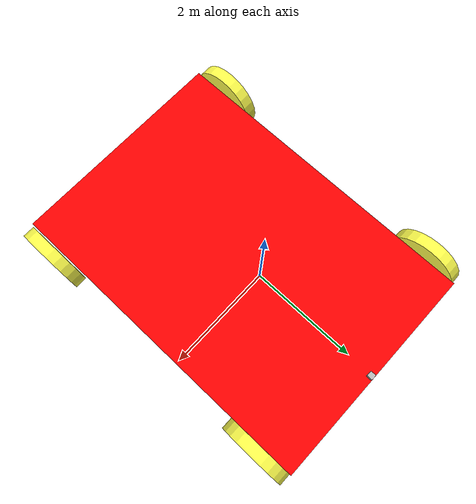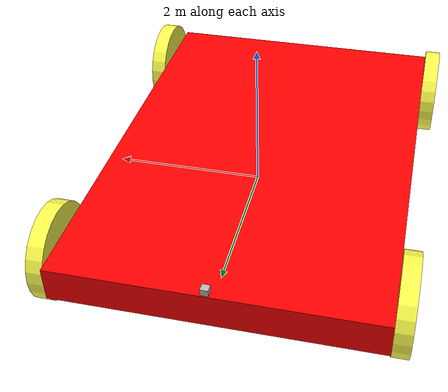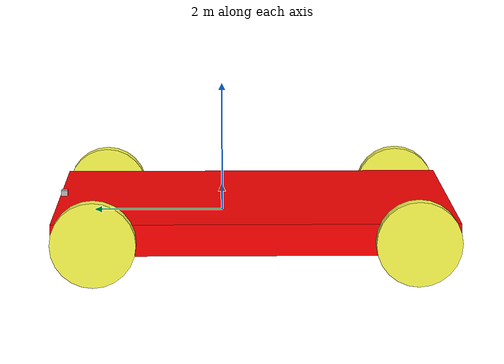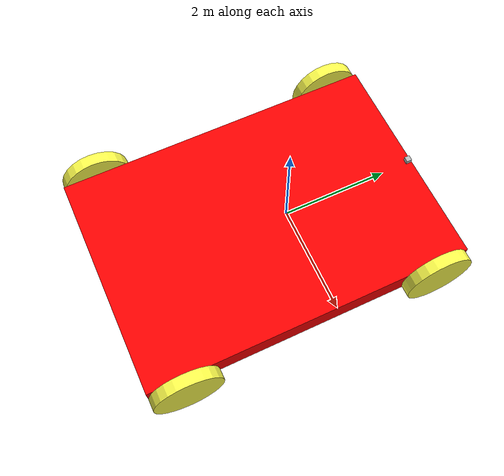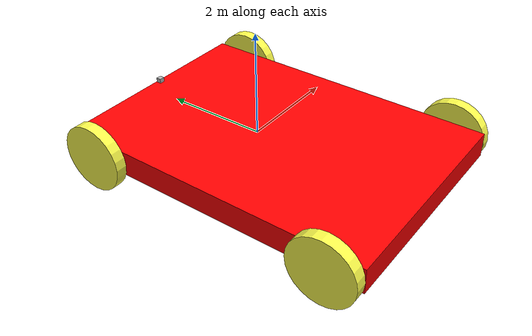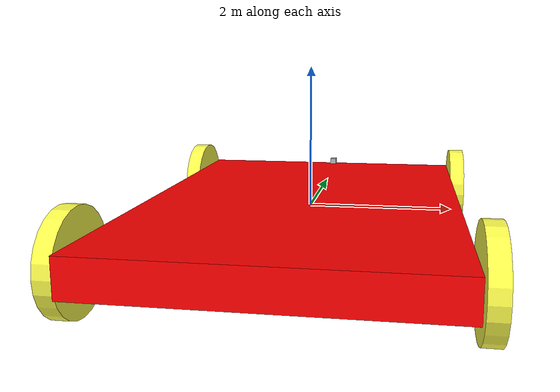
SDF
<?xml version='1.0'?>
<sdf version='1.6'>
  <model name='test'>
    <link name='link_0'>
      <inertial>
        <mass>12.0862</mass>
        <inertia>
          <ixx>37.404</ixx>
          <ixy>0</ixy>
          <ixz>0</ixz>
          <iyy>17.9472</iyy>
          <iyz>0</iyz>
          <izz>54.8982</izz>
        </inertia>
        <pose frame=''>0 0 0 0 -0 0</pose>
      </inertial>
      <pose frame=''>-0.018137 -0.495672 -0.026455 0 -0 0</pose>
      <gravity>1</gravity>
      <self_collide>0</self_collide>
      <kinematic>0</kinematic>
      <enable_wind>0</enable_wind>
      <visual name='visual'>
        <pose frame=''>0 0 0 0 -0 0</pose>
        <geometry>
          <box>
            <size>4.19455 6.07555 0.474257</size>
          </box>
        </geometry>
        <material>
          <lighting>1</lighting>
          <script>
            <uri>file://media/materials/scripts/gazebo.material</uri>
            <name>Gazebo/Grey</name>
          </script>
          <ambient>1 0 0 0</ambient>
          <shader type='vertex'>
            <normal_map>__default__</normal_map>
          </shader>
          <diffuse>0.7 0.7 0.7 1</diffuse>
          <specular>0.01 0.01 0.01 1</specular>
          <emissive>0 0 0 1</emissive>
        </material>
        <transparency>0</transparency>
        <cast_shadows>1</cast_shadows>
      </visual>
      <collision name='collision'>
        <laser_retro>0</laser_retro>
        <max_contacts>10</max_contacts>
        <pose frame=''>0 0 0 0 -0 0</pose>
        <geometry>
          <box>
            <size>4.19455 6.07555 0.474257</size>
          </box>
        </geometry>
        <surface>
          <friction>
            <ode>
              <mu>1</mu>
              <mu2>1</mu2>
              <fdir1>0 0 0</fdir1>
              <slip1>0</slip1>
              <slip2>0</slip2>
            </ode>
            <torsional>
              <coefficient>1</coefficient>
              <patch_radius>0</patch_radius>
              <surface_radius>0</surface_radius>
              <use_patch_radius>1</use_patch_radius>
              <ode>
                <slip>0</slip>
              </ode>
            </torsional>
          </friction>
          <bounce>
            <restitution_coefficient>0</restitution_coefficient>
            <threshold>1e+06</threshold>
          </bounce>
          <contact>
            <collide_without_contact>0</collide_without_contact>
            <collide_without_contact_bitmask>1</collide_without_contact_bitmask>
            <collide_bitmask>1</collide_bitmask>
            <ode>
              <soft_cfm>0</soft_cfm>
              <soft_erp>0.2</soft_erp>
              <kp>1e+13</kp>
              <kd>1</kd>
              <max_vel>0.01</max_vel>
              <min_depth>0</min_depth>
            </ode>
            <bullet>
              <split_impulse>1</split_impulse>
              <split_impulse_penetration_threshold>-0.01</split_impulse_penetration_threshold>
              <soft_cfm>0</soft_cfm>
              <soft_erp>0.2</soft_erp>
              <kp>1e+13</kp>
              <kd>1</kd>
            </bullet>
          </contact>
        </surface>
      </collision>
    </link>
    <link name='link_1'>
      <inertial>
        <mass>0.353387</mass>
        <inertia>
          <ixx>0.0372116</ixx>
          <ixy>0</ixy>
          <ixz>0</ixz>
          <iyy>0.0372116</iyy>
          <iyz>0</iyz>
          <izz>0.0716261</izz>
        </inertia>
        <pose frame=''>0 0 0 0 -0 0</pose>
      </inertial>
      <pose frame=''>2.2192 -2.89676 -0.056367 0 -1.5707 0</pose>
      <gravity>1</gravity>
      <self_collide>0</self_collide>
      <kinematic>0</kinematic>
      <enable_wind>0</enable_wind>
      <visual name='visual'>
        <pose frame=''>0 0 0 0 -0 0</pose>
        <geometry>
          <cylinder>
            <radius>0.636686</radius>
            <length>0.217924</length>
          </cylinder>
        </geometry>
        <material>
          <lighting>1</lighting>
          <script>
            <uri>file://media/materials/scripts/gazebo.material</uri>
            <name>Gazebo/Grey</name>
          </script>
          <shader type='vertex'>
            <normal_map>__default__</normal_map>
          </shader>
          <ambient>1 1 0.3 1</ambient>
          <diffuse>0.7 0.7 0.7 1</diffuse>
          <specular>0.01 0.01 0.01 1</specular>
          <emissive>0 0 0 1</emissive>
        </material>
        <transparency>0</transparency>
        <cast_shadows>1</cast_shadows>
      </visual>
      <collision name='collision'>
        <laser_retro>0</laser_retro>
        <max_contacts>10</max_contacts>
        <pose frame=''>0 0 0 0 -0 0</pose>
        <geometry>
          <cylinder>
            <radius>0.636686</radius>
            <length>0.217924</length>
          </cylinder>
        </geometry>
        <surface>
          <friction>
            <ode>
              <mu>1</mu>
              <mu2>1</mu2>
              <fdir1>0 0 0</fdir1>
              <slip1>0</slip1>
              <slip2>0</slip2>
            </ode>
            <torsional>
              <coefficient>1</coefficient>
              <patch_radius>0</patch_radius>
              <surface_radius>0</surface_radius>
              <use_patch_radius>1</use_patch_radius>
              <ode>
                <slip>0</slip>
              </ode>
            </torsional>
          </friction>
          <bounce>
            <restitution_coefficient>0</restitution_coefficient>
            <threshold>1e+06</threshold>
          </bounce>
          <contact>
            <collide_without_contact>0</collide_without_contact>
            <collide_without_contact_bitmask>1</collide_without_contact_bitmask>
            <collide_bitmask>1</collide_bitmask>
            <ode>
              <soft_cfm>0</soft_cfm>
              <soft_erp>0.2</soft_erp>
              <kp>1e+13</kp>
              <kd>1</kd>
              <max_vel>0.01</max_vel>
              <min_depth>0</min_depth>
            </ode>
            <bullet>
              <split_impulse>1</split_impulse>
              <split_impulse_penetration_threshold>-0.01</split_impulse_penetration_threshold>
              <soft_cfm>0</soft_cfm>
              <soft_erp>0.2</soft_erp>
              <kp>1e+13</kp>
              <kd>1</kd>
            </bullet>
          </contact>
        </surface>
      </collision>
    </link>
    <link name='link_1_clone'>
      <inertial>
        <mass>0.353387</mass>
        <inertia>
          <ixx>0.0372116</ixx>
          <ixy>0</ixy>
          <ixz>0</ixz>
          <iyy>0.0372116</iyy>
          <iyz>0</iyz>
          <izz>0.0716261</izz>
        </inertia>
        <pose frame=''>0 0 0 0 -0 0</pose>
      </inertial>
      <pose frame=''>2.18816 1.90542 -0.056367 0 -1.5707 0</pose>
      <gravity>1</gravity>
      <self_collide>0</self_collide>
      <kinematic>0</kinematic>
      <enable_wind>0</enable_wind>
      <visual name='visual'>
        <pose frame=''>0 0 0 0 -0 0</pose>
        <geometry>
          <cylinder>
            <radius>0.636686</radius>
            <length>0.217924</length>
          </cylinder>
        </geometry>
        <material>
          <lighting>1</lighting>
          <script>
            <uri>file://media/materials/scripts/gazebo.material</uri>
            <name>Gazebo/Grey</name>
          </script>
          <shader type='vertex'>
            <normal_map>__default__</normal_map>
          </shader>
          <ambient>1 1 0.3 1</ambient>
          <diffuse>0.7 0.7 0.7 1</diffuse>
          <specular>0.01 0.01 0.01 1</specular>
          <emissive>0 0 0 1</emissive>
        </material>
        <transparency>0</transparency>
        <cast_shadows>1</cast_shadows>
      </visual>
      <collision name='collision'>
        <laser_retro>0</laser_retro>
        <max_contacts>10</max_contacts>
        <pose frame=''>0 0 0 0 -0 0</pose>
        <geometry>
          <cylinder>
            <radius>0.636686</radius>
            <length>0.217924</length>
          </cylinder>
        </geometry>
        <surface>
          <friction>
            <ode>
              <mu>1</mu>
              <mu2>1</mu2>
              <fdir1>0 0 0</fdir1>
              <slip1>0</slip1>
              <slip2>0</slip2>
            </ode>
            <torsional>
              <coefficient>1</coefficient>
              <patch_radius>0</patch_radius>
              <surface_radius>0</surface_radius>
              <use_patch_radius>1</use_patch_radius>
              <ode>
                <slip>0</slip>
              </ode>
            </torsional>
          </friction>
          <bounce>
            <restitution_coefficient>0</restitution_coefficient>
            <threshold>1e+06</threshold>
          </bounce>
          <contact>
            <collide_without_contact>0</collide_without_contact>
            <collide_without_contact_bitmask>1</collide_without_contact_bitmask>
            <collide_bitmask>1</collide_bitmask>
            <ode>
              <soft_cfm>0</soft_cfm>
              <soft_erp>0.2</soft_erp>
              <kp>1e+13</kp>
              <kd>1</kd>
              <max_vel>0.01</max_vel>
              <min_depth>0</min_depth>
            </ode>
            <bullet>
              <split_impulse>1</split_impulse>
              <split_impulse_penetration_threshold>-0.01</split_impulse_penetration_threshold>
              <soft_cfm>0</soft_cfm>
              <soft_erp>0.2</soft_erp>
              <kp>1e+13</kp>
              <kd>1</kd>
            </bullet>
          </contact>
        </surface>
      </collision>
    </link>
    <link name='link_1_clone_0'>
      <inertial>
        <mass>0.353387</mass>
        <inertia>
          <ixx>0.0372116</ixx>
          <ixy>0</ixy>
          <ixz>0</ixz>
          <iyy>0.0372116</iyy>
          <iyz>0</iyz>
          <izz>0.0716261</izz>
        </inertia>
        <pose frame=''>0 0 0 0 -0 0</pose>
      </inertial>
      <pose frame=''>-2.22444 1.90542 -0.056367 0 -1.5707 0</pose>
      <gravity>1</gravity>
      <self_collide>0</self_collide>
      <kinematic>0</kinematic>
      <enable_wind>0</enable_wind>
      <visual name='visual'>
        <pose frame=''>0 0 0 0 -0 0</pose>
        <geometry>
          <cylinder>
            <radius>0.636686</radius>
            <length>0.217924</length>
          </cylinder>
        </geometry>
        <material>
          <lighting>1</lighting>
          <script>
            <uri>file://media/materials/scripts/gazebo.material</uri>
            <name>Gazebo/Grey</name>
          </script>
          <shader type='vertex'>
            <normal_map>__default__</normal_map>
          </shader>
          <ambient>1 1 0.3 1</ambient>
          <diffuse>0.7 0.7 0.7 1</diffuse>
          <specular>0.01 0.01 0.01 1</specular>
          <emissive>0 0 0 1</emissive>
        </material>
        <transparency>0</transparency>
        <cast_shadows>1</cast_shadows>
      </visual>
      <collision name='collision'>
        <laser_retro>0</laser_retro>
        <max_contacts>10</max_contacts>
        <pose frame=''>0 0 0 0 -0 0</pose>
        <geometry>
          <cylinder>
            <radius>0.636686</radius>
            <length>0.217924</length>
          </cylinder>
        </geometry>
        <surface>
          <friction>
            <ode>
              <mu>1</mu>
              <mu2>1</mu2>
              <fdir1>0 0 0</fdir1>
              <slip1>0</slip1>
              <slip2>0</slip2>
            </ode>
            <torsional>
              <coefficient>1</coefficient>
              <patch_radius>0</patch_radius>
              <surface_radius>0</surface_radius>
              <use_patch_radius>1</use_patch_radius>
              <ode>
                <slip>0</slip>
              </ode>
            </torsional>
          </friction>
          <bounce>
            <restitution_coefficient>0</restitution_coefficient>
            <threshold>1e+06</threshold>
          </bounce>
          <contact>
            <collide_without_contact>0</collide_without_contact>
            <collide_without_contact_bitmask>1</collide_without_contact_bitmask>
            <collide_bitmask>1</collide_bitmask>
            <ode>
              <soft_cfm>0</soft_cfm>
              <soft_erp>0.2</soft_erp>
              <kp>1e+13</kp>
              <kd>1</kd>
              <max_vel>0.01</max_vel>
              <min_depth>0</min_depth>
            </ode>
            <bullet>
              <split_impulse>1</split_impulse>
              <split_impulse_penetration_threshold>-0.01</split_impulse_penetration_threshold>
              <soft_cfm>0</soft_cfm>
              <soft_erp>0.2</soft_erp>
              <kp>1e+13</kp>
              <kd>1</kd>
            </bullet>
          </contact>
        </surface>
      </collision>
    </link>
    <link name='link_1_clone_1'>
      <inertial>
        <mass>0.353387</mass>
        <inertia>
          <ixx>0.0372116</ixx>
          <ixy>0</ixy>
          <ixz>0</ixz>
          <iyy>0.0372116</iyy>
          <iyz>0</iyz>
          <izz>0.0716261</izz>
        </inertia>
        <pose frame=''>0 0 0 0 -0 0</pose>
      </inertial>
      <pose frame=''>-2.22444 -2.89676 -0.056367 0 -1.5707 0</pose>
      <gravity>1</gravity>
      <self_collide>0</self_collide>
      <kinematic>0</kinematic>
      <enable_wind>0</enable_wind>
      <visual name='visual'>
        <pose frame=''>0 0 0 0 -0 0</pose>
        <geometry>
          <cylinder>
            <radius>0.636686</radius>
            <length>0.217924</length>
          </cylinder>
        </geometry>
        <material>
          <lighting>1</lighting>
          <script>
            <uri>file://media/materials/scripts/gazebo.material</uri>
            <name>Gazebo/Grey</name>
          </script>
          <shader type='vertex'>
            <normal_map>__default__</normal_map>
          </shader>
          <ambient>1 1 0.3 1</ambient>
          <diffuse>0.7 0.7 0.7 1</diffuse>
          <specular>0.01 0.01 0.01 1</specular>
          <emissive>0 0 0 1</emissive>
        </material>
        <transparency>0</transparency>
        <cast_shadows>1</cast_shadows>
      </visual>
      <collision name='collision'>
        <laser_retro>0</laser_retro>
        <max_contacts>10</max_contacts>
        <pose frame=''>0 0 0 0 -0 0</pose>
        <geometry>
          <cylinder>
            <radius>0.636686</radius>
            <length>0.217924</length>
          </cylinder>
        </geometry>
        <surface>
          <friction>
            <ode>
              <mu>1</mu>
              <mu2>1</mu2>
              <fdir1>0 0 0</fdir1>
              <slip1>0</slip1>
              <slip2>0</slip2>
            </ode>
            <torsional>
              <coefficient>1</coefficient>
              <patch_radius>0</patch_radius>
              <surface_radius>0</surface_radius>
              <use_patch_radius>1</use_patch_radius>
              <ode>
                <slip>0</slip>
              </ode>
            </torsional>
          </friction>
          <bounce>
            <restitution_coefficient>0</restitution_coefficient>
            <threshold>1e+06</threshold>
          </bounce>
          <contact>
            <collide_without_contact>0</collide_without_contact>
            <collide_without_contact_bitmask>1</collide_without_contact_bitmask>
            <collide_bitmask>1</collide_bitmask>
            <ode>
              <soft_cfm>0</soft_cfm>
              <soft_erp>0.2</soft_erp>
              <kp>1e+13</kp>
              <kd>1</kd>
              <max_vel>0.01</max_vel>
              <min_depth>0</min_depth>
            </ode>
            <bullet>
              <split_impulse>1</split_impulse>
              <split_impulse_penetration_threshold>-0.01</split_impulse_penetration_threshold>
              <soft_cfm>0</soft_cfm>
              <soft_erp>0.2</soft_erp>
              <kp>1e+13</kp>
              <kd>1</kd>
            </bullet>
          </contact>
        </surface>
      </collision>
    </link>
    <model name='camera'>
      <pose frame=''>0.059651 2.47836 0.251921 0 -0 1.52695</pose>
      <link name='link'>
        <inertial>
          <mass>0.1</mass>
          <inertia>
            <ixx>0.000166667</ixx>
            <iyy>0.000166667</iyy>
            <izz>0.000166667</izz>
            <ixy>0</ixy>
            <ixz>0</ixz>
            <iyz>0</iyz>
          </inertia>
        </inertial>
        <collision name='collision'>
          <geometry>
            <box>
              <size>0.1 0.1 0.1</size>
            </box>
          </geometry>
        </collision>
        <visual name='visual'>
          <geometry>
            <box>
              <size>0.1 0.1 0.1</size>
            </box>
          </geometry>
        </visual>
        <sensor name='camera' type='camera'>
          <camera name='__default__'>
            <horizontal_fov>1.047</horizontal_fov>
            <image>
              <width>320</width>
              <height>240</height>
            </image>
            <clip>
              <near>0.1</near>
              <far>100</far>
            </clip>
          </camera>
          <always_on>1</always_on>
          <update_rate>30</update_rate>
          <visualize>1</visualize>
        </sensor>
      </link>
    </model>
    <joint name='link_0_JOINT_0' type='revolute'>
      <parent>link_0</parent>
      <child>link_1_clone_1</child>
      <pose frame=''>0 0 0 0 -0 0</pose>
      <axis>
        <xyz>-0 -0 -1</xyz>
        <use_parent_model_frame>0</use_parent_model_frame>
        <limit>
          <lower>-1.79769e+308</lower>
          <upper>1.79769e+308</upper>
          <effort>-1</effort>
          <velocity>-1</velocity>
        </limit>
        <dynamics>
          <spring_reference>0</spring_reference>
          <spring_stiffness>0</spring_stiffness>
          <damping>0</damping>
        </dynamics>
      </axis>
      <physics>
        <ode>
          <limit>
            <cfm>0</cfm>
            <erp>0.2</erp>
          </limit>
          <suspension>
            <cfm>0</cfm>
            <erp>0.2</erp>
          </suspension>
        </ode>
      </physics>
    </joint>
    <joint name='link_0_JOINT_1' type='revolute'>
      <parent>link_0</parent>
      <child>link_1</child>
      <pose frame=''>0 0 0 0 -0 0</pose>
      <axis>
        <xyz>0 0 1</xyz>
        <use_parent_model_frame>0</use_parent_model_frame>
        <limit>
          <lower>-1.79769e+308</lower>
          <upper>1.79769e+308</upper>
          <effort>-1</effort>
          <velocity>-1</velocity>
        </limit>
        <dynamics>
          <spring_reference>0</spring_reference>
          <spring_stiffness>0</spring_stiffness>
          <damping>0</damping>
        </dynamics>
      </axis>
      <physics>
        <ode>
          <limit>
            <cfm>0</cfm>
            <erp>0.2</erp>
          </limit>
          <suspension>
            <cfm>0</cfm>
            <erp>0.2</erp>
          </suspension>
        </ode>
      </physics>
    </joint>
    <joint name='link_0_JOINT_2' type='revolute'>
      <parent>link_0</parent>
      <child>link_1_clone</child>
      <pose frame=''>0 0 0 0 -0 0</pose>
      <axis>
        <xyz>0 0 1</xyz>
        <use_parent_model_frame>0</use_parent_model_frame>
        <limit>
          <lower>-1.79769e+308</lower>
          <upper>1.79769e+308</upper>
          <effort>-1</effort>
          <velocity>-1</velocity>
        </limit>
        <dynamics>
          <spring_reference>0</spring_reference>
          <spring_stiffness>0</spring_stiffness>
          <damping>0</damping>
        </dynamics>
      </axis>
      <physics>
        <ode>
          <limit>
            <cfm>0</cfm>
            <erp>0.2</erp>
          </limit>
          <suspension>
            <cfm>0</cfm>
            <erp>0.2</erp>
          </suspension>
        </ode>
      </physics>
    </joint>
    <joint name='link_0_JOINT_3' type='revolute'>
      <parent>link_0</parent>
      <child>link_1_clone_0</child>
      <pose frame=''>0 0 0 0 -0 0</pose>
      <axis>
        <xyz>-0 -0 -1</xyz>
        <use_parent_model_frame>0</use_parent_model_frame>
        <limit>
          <lower>-1.79769e+308</lower>
          <upper>1.79769e+308</upper>
          <effort>-1</effort>
          <velocity>-1</velocity>
        </limit>
        <dynamics>
          <spring_reference>0</spring_reference>
          <spring_stiffness>0</spring_stiffness>
          <damping>0</damping>
        </dynamics>
      </axis>
      <physics>
        <ode>
          <limit>
            <cfm>0</cfm>
            <erp>0.2</erp>
          </limit>
          <suspension>
            <cfm>0</cfm>
            <erp>0.2</erp>
          </suspension>
        </ode>
      </physics>
    </joint>
    <joint name='link_0_JOINT_4' type='fixed'>
      <parent>link_0</parent>
      <child>camera::link</child>
      <pose frame=''>0 0 0 0 -0 0</pose>
      <physics>
        <ode>
          <limit>
            <cfm>0</cfm>
            <erp>0.2</erp>
          </limit>
          <suspension>
            <cfm>0</cfm>
            <erp>0.2</erp>
          </suspension>
        </ode>
      </physics>
    </joint>
    <static>0</static>
    <allow_auto_disable>1</allow_auto_disable>
  </model>
</sdf>
